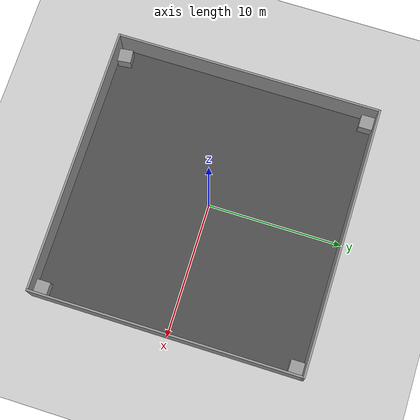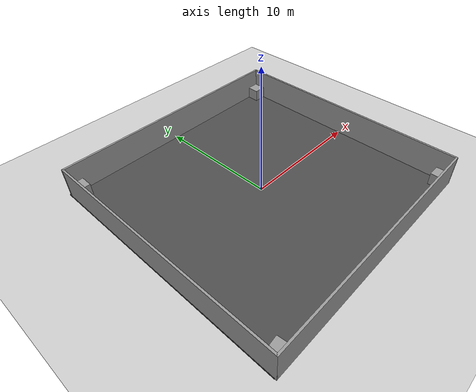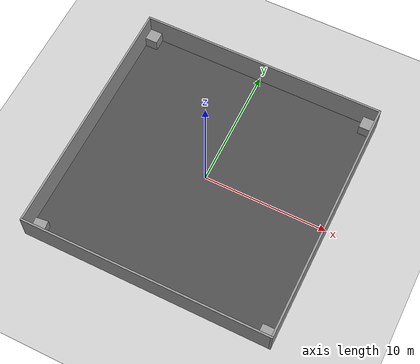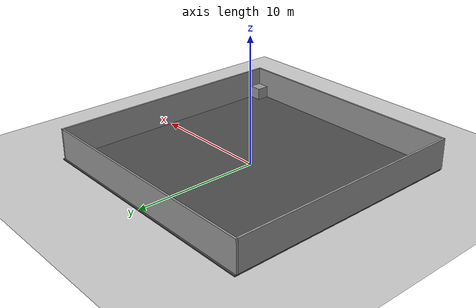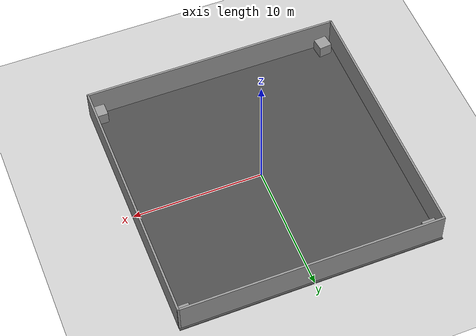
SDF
<sdf version="1.7">
 <world name="default">
  <light name="sun" type="directional">
   <pose>0 0 10 0 -0 0</pose>
   <diffuse>0.8 0.8 0.8 1</diffuse>
   <specular>0.2 0.2 0.2 1</specular>
   <attenuation>
    <range>1000</range>
    <constant>0.9</constant>
    <linear>0.01</linear>
    <quadratic>0.001</quadratic>
   </attenuation>
   <direction>-0.5 0.1 -0.9</direction>
   <spot><inner_angle>0</inner_angle><outer_angle>0</outer_angle><falloff>0</falloff></spot>
  </light>
  <model name="ground_plane">
   <static>1</static>
   <link name="link">
    <collision name="collision">
     <geometry><plane><normal>0 0 1</normal><size>100 100</size></plane></geometry>
     <surface><friction><ode><mu>100</mu><mu2>50</mu2></ode></friction></surface>
    </collision>
    <visual name="visual">
     <cast_shadows>0</cast_shadows>
     <geometry><plane><normal>0 0 1</normal><size>100 100</size></plane></geometry>
     <material>
      <script><uri>file://media/materials/scripts/gazebo.material</uri><name>Gazebo/Grey</name></script>
     </material>
    </visual>
   </link>
  </model>
  <gravity>0 0 -9.8</gravity>
  <magnetic_field>6e-06 2.3e-05 -4.2e-05</magnetic_field>
  <atmosphere type="adiabatic"/>
  <physics type="ode">
   <max_step_size>0.001</max_step_size>
   <real_time_factor>1</real_time_factor>
   <real_time_update_rate>1000</real_time_update_rate>
  </physics>
  <scene><ambient>0.4 0.4 0.4 1</ambient><background>0.7 0.7 0.7 1</background><shadows>1</shadows></scene>
  <audio><device>default</device></audio>
  <spherical_coordinates>
   <surface_model>EARTH_WGS84</surface_model>
   <latitude_deg>0</latitude_deg>
   <longitude_deg>0</longitude_deg>
   <elevation>0</elevation>
   <heading_deg>0</heading_deg>
  </spherical_coordinates>
  <model name="asphalt_plane">
   <static>1</static>
   <link name="link">
    <collision name="collision"><geometry><box><size>20 20 0.1</size></box></geometry></collision>
    <visual name="visual">
     <cast_shadows>0</cast_shadows>
     <geometry><box><size>20 20 0.1</size></box></geometry>
     <material>
      <script>
       <uri>model://asphalt_plane/materials/scripts</uri>
       <uri>model://asphalt_plane/materials/textures</uri>
       <name>vrc/asphalt</name>
      </script>
     </material>
    </visual>
   </link>
   <pose>0.055589 0.052234 0 0 -0 0</pose>
  </model>
  <model name="4Walls">
   <pose>0.075 -0.075 0 0 -0 0</pose>
   <link name="Wall_17">
    <collision name="Wall_17_Collision">
     <geometry><box><size>20 0.15 2.5</size></box></geometry>
     <pose>0 0 1.25 0 -0 0</pose>
    </collision>
    <visual name="Wall_17_Visual">
     <pose>0 0 1.25 0 -0 0</pose>
     <geometry><box><size>20 0.15 2.5</size></box></geometry>
     <material>
      <script><uri>file://media/materials/scripts/gazebo.material</uri><name>Gazebo/Grey</name></script>
      <ambient>1 1 1 1</ambient>
     </material>
     <meta><layer>0</layer></meta>
    </visual>
    <pose>0 -9.925 0 0 -0 0</pose>
   </link>
   <link name="Wall_19">
    <collision name="Wall_19_Collision">
     <geometry><box><size>20 0.15 2.5</size></box></geometry>
     <pose>0 0 1.25 0 -0 0</pose>
    </collision>
    <visual name="Wall_19_Visual">
     <pose>0 0 1.25 0 -0 0</pose>
     <geometry><box><size>20 0.15 2.5</size></box></geometry>
     <material>
      <script><uri>file://media/materials/scripts/gazebo.material</uri><name>Gazebo/Grey</name></script>
      <ambient>1 1 1 1</ambient>
     </material>
     <meta><layer>0</layer></meta>
    </visual>
    <pose>9.925 -0 0 0 -0 1.5708</pose>
   </link>
   <link name="Wall_21">
    <collision name="Wall_21_Collision">
     <geometry><box><size>20 0.15 2.5</size></box></geometry>
     <pose>0 0 1.25 0 -0 0</pose>
    </collision>
    <visual name="Wall_21_Visual">
     <pose>0 0 1.25 0 -0 0</pose>
     <geometry><box><size>20 0.15 2.5</size></box></geometry>
     <material>
      <script><uri>file://media/materials/scripts/gazebo.material</uri><name>Gazebo/Grey</name></script>
      <ambient>1 1 1 1</ambient>
     </material>
     <meta><layer>0</layer></meta>
    </visual>
    <pose>0 9.925 0 0 -0 3.14159</pose>
   </link>
   <link name="Wall_22">
    <collision name="Wall_22_Collision">
     <geometry><box><size>20 0.15 2.5</size></box></geometry>
     <pose>0 0 1.25 0 -0 0</pose>
    </collision>
    <visual name="Wall_22_Visual">
     <pose>0 0 1.25 0 -0 0</pose>
     <geometry><box><size>20 0.15 2.5</size></box></geometry>
     <material>
      <script><uri>file://media/materials/scripts/gazebo.material</uri><name>Gazebo/Grey</name></script>
      <ambient>1 1 1 1</ambient>
     </material>
     <meta><layer>0</layer></meta>
    </visual>
    <pose>-9.925 -0 0 0 -0 -1.5708</pose>
   </link>
   <static>1</static>
  </model>
  <model name="unit_box">
   <pose>9.40676 -9.39923 0.55 0 -0 6.4e-05</pose>
   <link name="link">
    <inertial>
     <mass>1</mass>
     <inertia>
      <ixx>0.166667</ixx>
      <ixy>0</ixy>
      <ixz>0</ixz>
      <iyy>0.166667</iyy>
      <iyz>0</iyz>
      <izz>0.166667</izz>
     </inertia>
    </inertial>
    <collision name="collision"><geometry><box><size>1 1 1</size></box></geometry></collision>
    <visual name="visual">
     <geometry><box><size>1 1 1</size></box></geometry>
     <material>
      <script><name>Gazebo/Grey</name><uri>file://media/materials/scripts/gazebo.material</uri></script>
     </material>
    </visual>
   </link>
  </model>
  <model name="unit_box_clone">
   <pose>9.4247 9.27475 0.55 0 -0 6.4e-05</pose>
   <link name="link">
    <inertial>
     <mass>1</mass>
     <inertia>
      <ixx>0.166667</ixx>
      <ixy>0</ixy>
      <ixz>0</ixz>
      <iyy>0.166667</iyy>
      <iyz>0</iyz>
      <izz>0.166667</izz>
     </inertia>
    </inertial>
    <collision name="collision"><geometry><box><size>1 1 1</size></box></geometry></collision>
    <visual name="visual">
     <geometry><box><size>1 1 1</size></box></geometry>
     <material>
      <script><name>Gazebo/Grey</name><uri>file://media/materials/scripts/gazebo.material</uri></script>
     </material>
    </visual>
   </link>
  </model>
  <model name="unit_box_clone_clone">
   <pose>-9.26194 9.27497 0.55 0 -0 3.3e-05</pose>
   <link name="link">
    <inertial>
     <mass>1</mass>
     <inertia>
      <ixx>0.166667</ixx>
      <ixy>0</ixy>
      <ixz>0</ixz>
      <iyy>0.166667</iyy>
      <iyz>0</iyz>
      <izz>0.166667</izz>
     </inertia>
    </inertial>
    <collision name="collision"><geometry><box><size>1 1 1</size></box></geometry></collision>
    <visual name="visual">
     <geometry><box><size>1 1 1</size></box></geometry>
     <material>
      <script><name>Gazebo/Grey</name><uri>file://media/materials/scripts/gazebo.material</uri></script>
     </material>
    </visual>
   </link>
  </model>
  <model name="unit_box_clone_clone_clone">
   <pose>-8.95089 -9.37204 0.55 0 -0 0.112298</pose>
   <link name="link">
    <inertial>
     <mass>1</mass>
     <inertia>
      <ixx>0.166667</ixx>
      <ixy>0</ixy>
      <ixz>0</ixz>
      <iyy>0.166667</iyy>
      <iyz>0</iyz>
      <izz>0.166667</izz>
     </inertia>
    </inertial>
    <collision name="collision"><geometry><box><size>1 1 1</size></box></geometry></collision>
    <visual name="visual">
     <geometry><box><size>1 1 1</size></box></geometry>
     <material>
      <script><name>Gazebo/Grey</name><uri>file://media/materials/scripts/gazebo.material</uri></script>
     </material>
    </visual>
   </link>
  </model>
 </world>
</sdf>
